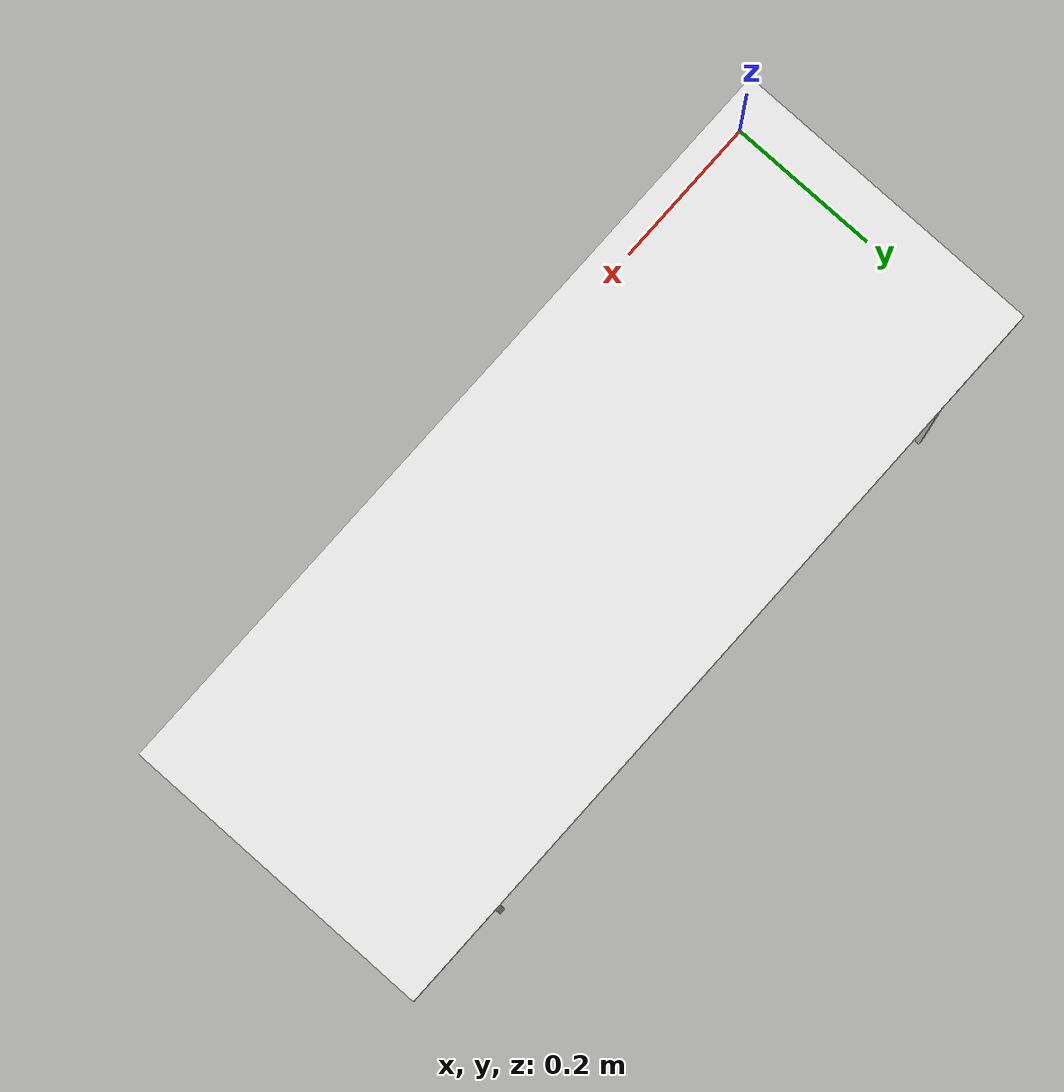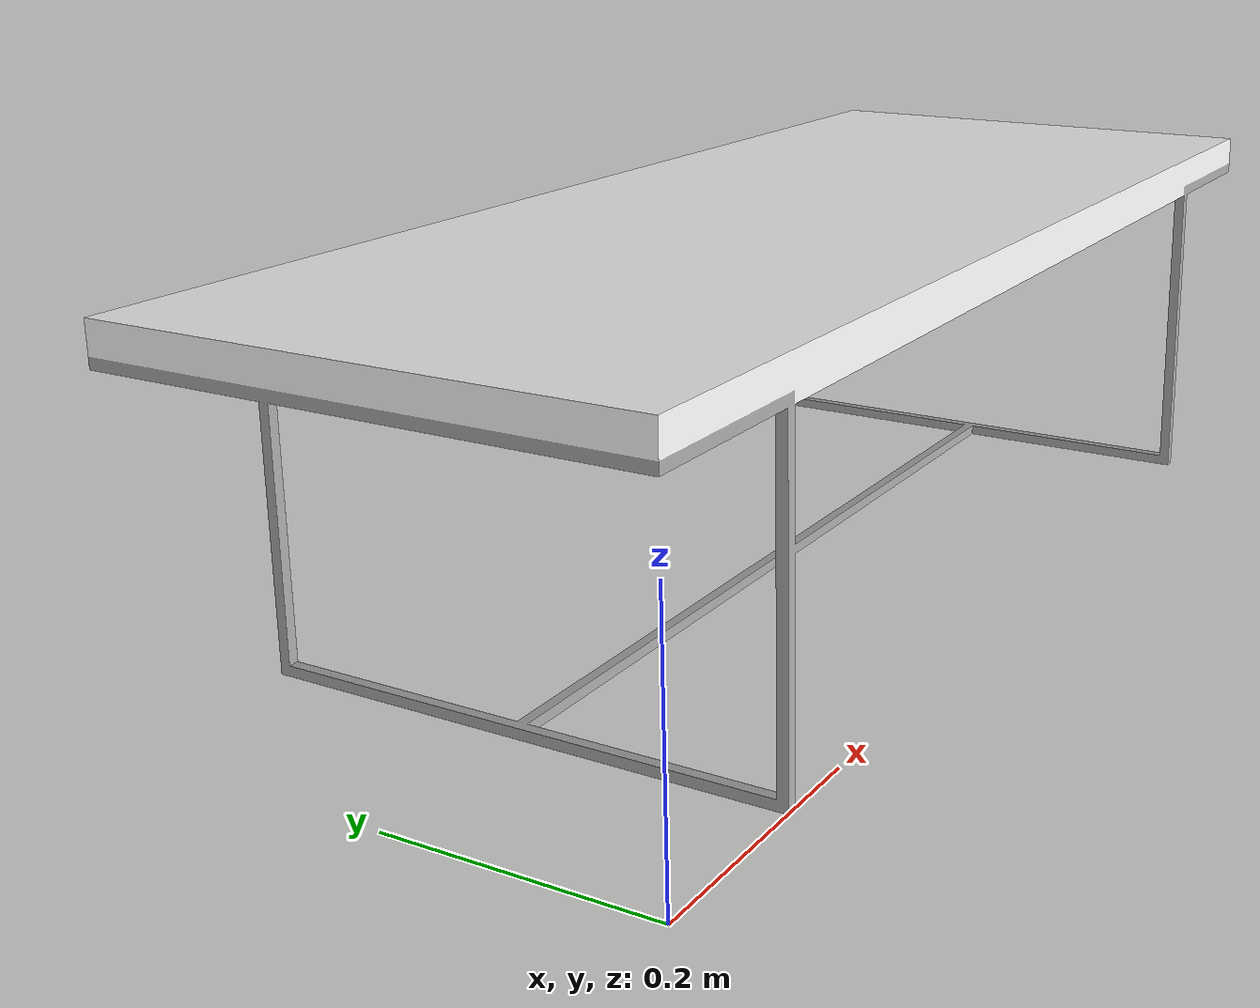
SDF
<?xml version="1.0" ?>
<sdf version="1.5">
  <model name="simple_table">
	<pose>0 0 0 0 0 0</pose>
    <static>true</static>
    <link name="link">
      <collision name="collision">
		<pose>0.5 0.2 0.14 0 0 0</pose>
        <geometry>
          <box>
            <size>1 0.4 0.28</size>
          </box>
        </geometry>
      </collision>

      <visual name="visual">
        <geometry>
          <mesh>
            <uri>model://simple_table/Table.dae</uri>
          </mesh>
        </geometry>
      </visual>
    </link>
  </model>
</sdf>
